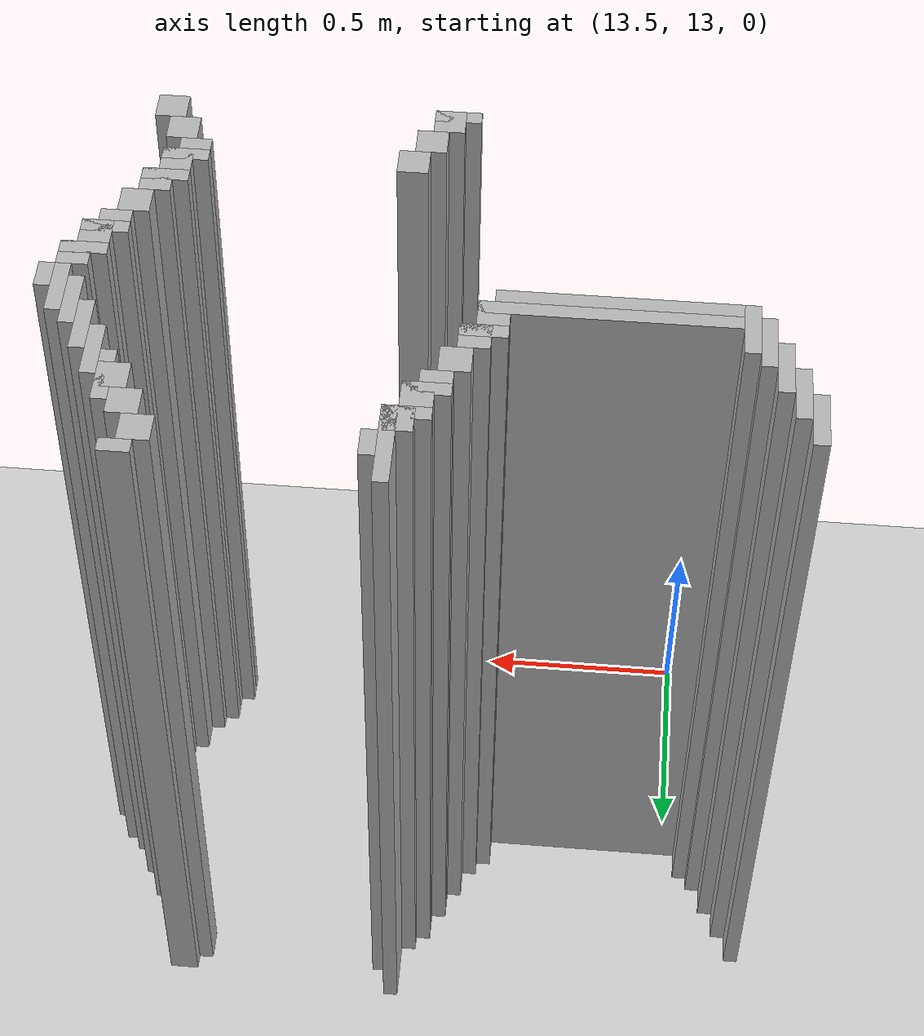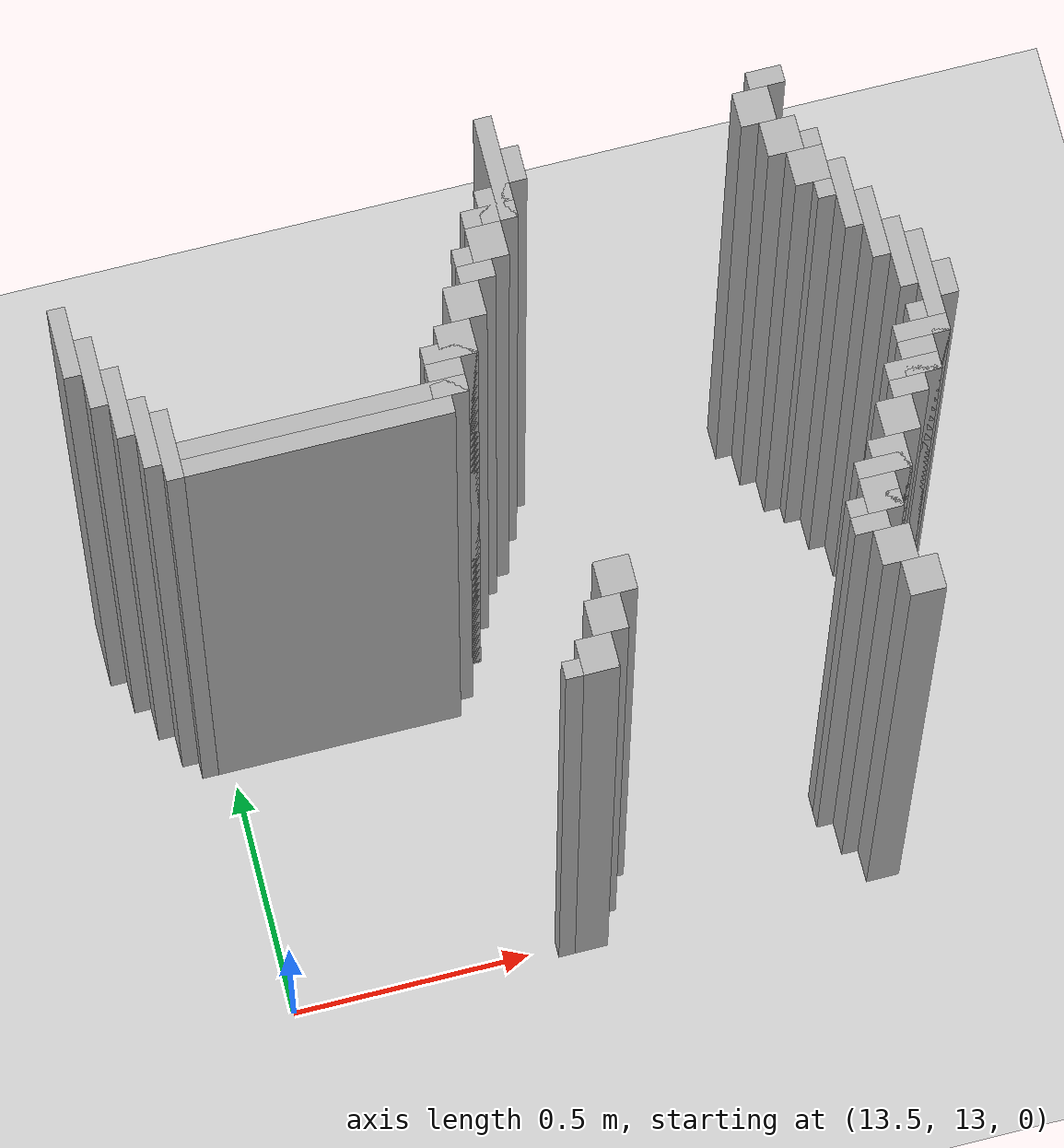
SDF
<sdf version="1.6">
 <world name="slam_world">
  <model name="ground_plane">
   <static>true</static>
   <link name="link">
    <collision name="collision">
     <geometry><plane><normal>0 0 1</normal><size>100 100</size></plane></geometry>
    </collision>
    <visual name="visual">
     <geometry><plane><normal>0 0 1</normal><size>100 100</size></plane></geometry>
     <material>
      <ambient>0.8 0.8 0.8 1</ambient>
      <diffuse>0.8 0.8 0.8 1</diffuse>
      <specular>0.8 0.8 0.8 1</specular>
     </material>
    </visual>
   </link>
  </model>
  <model name="wall_1115">
   <static>true</static>
   <pose>14.18213457076566 13.990719257540603 1.0 0 0 0</pose>
   <link name="link">
    <collision name="collision">
     <geometry><box><size>0.03480278422273782 0.2088167053364269 2.0</size></box></geometry>
    </collision>
    <visual name="visual">
     <geometry><box><size>0.03480278422273782 0.2088167053364269 2.0</size></box></geometry>
     <material><ambient>0.5 0.5 0.5 1</ambient><diffuse>0.7 0.7 0.7 1</diffuse></material>
    </visual>
   </link>
  </model>
  <model name="wall_1123">
   <static>true</static>
   <pose>14.721577726218097 14.042923433874709 1.0 0 0 0</pose>
   <link name="link">
    <collision name="collision">
     <geometry><box><size>0.06960556844547564 0.03480278422273782 2.0</size></box></geometry>
    </collision>
    <visual name="visual">
     <geometry><box><size>0.06960556844547564 0.03480278422273782 2.0</size></box></geometry>
     <material><ambient>0.5 0.5 0.5 1</ambient><diffuse>0.7 0.7 0.7 1</diffuse></material>
    </visual>
   </link>
  </model>
  <model name="wall_1136">
   <static>true</static>
   <pose>14.2169373549884 13.990719257540603 1.0 0 0 0</pose>
   <link name="link">
    <collision name="collision">
     <geometry><box><size>0.03480278422273782 0.06960556844547564 2.0</size></box></geometry>
    </collision>
    <visual name="visual">
     <geometry><box><size>0.03480278422273782 0.06960556844547564 2.0</size></box></geometry>
     <material><ambient>0.5 0.5 0.5 1</ambient><diffuse>0.7 0.7 0.7 1</diffuse></material>
    </visual>
   </link>
  </model>
  <model name="wall_1137">
   <static>true</static>
   <pose>14.68677494199536 13.990719257540603 1.0 0 0 0</pose>
   <link name="link">
    <collision name="collision">
     <geometry><box><size>0.06960556844547564 0.06960556844547564 2.0</size></box></geometry>
    </collision>
    <visual name="visual">
     <geometry><box><size>0.06960556844547564 0.06960556844547564 2.0</size></box></geometry>
     <material><ambient>0.5 0.5 0.5 1</ambient><diffuse>0.7 0.7 0.7 1</diffuse></material>
    </visual>
   </link>
  </model>
  <model name="wall_1153">
   <static>true</static>
   <pose>14.164733178654291 13.921113689095128 1.0 0 0 0</pose>
   <link name="link">
    <collision name="collision">
     <geometry><box><size>0.06960556844547564 0.06960556844547564 2.0</size></box></geometry>
    </collision>
    <visual name="visual">
     <geometry><box><size>0.06960556844547564 0.06960556844547564 2.0</size></box></geometry>
     <material><ambient>0.5 0.5 0.5 1</ambient><diffuse>0.7 0.7 0.7 1</diffuse></material>
    </visual>
   </link>
  </model>
  <model name="wall_1154">
   <static>true</static>
   <pose>14.721577726218097 13.921113689095128 1.0 0 0 0</pose>
   <link name="link">
    <collision name="collision">
     <geometry><box><size>0.06960556844547564 0.06960556844547564 2.0</size></box></geometry>
    </collision>
    <visual name="visual">
     <geometry><box><size>0.06960556844547564 0.06960556844547564 2.0</size></box></geometry>
     <material><ambient>0.5 0.5 0.5 1</ambient><diffuse>0.7 0.7 0.7 1</diffuse></material>
    </visual>
   </link>
  </model>
  <model name="wall_1169">
   <static>true</static>
   <pose>13.312064965197216 13.851508120649651 1.0 0 0 0</pose>
   <link name="link">
    <collision name="collision">
     <geometry><box><size>0.03480278422273782 0.13921113689095127 2.0</size></box></geometry>
    </collision>
    <visual name="visual">
     <geometry><box><size>0.03480278422273782 0.13921113689095127 2.0</size></box></geometry>
     <material><ambient>0.5 0.5 0.5 1</ambient><diffuse>0.7 0.7 0.7 1</diffuse></material>
    </visual>
   </link>
  </model>
  <model name="wall_1170">
   <static>true</static>
   <pose>14.147331786542923 13.903712296983759 1.0 0 0 0</pose>
   <link name="link">
    <collision name="collision">
     <geometry><box><size>0.10440835266821345 0.03480278422273782 2.0</size></box></geometry>
    </collision>
    <visual name="visual">
     <geometry><box><size>0.10440835266821345 0.03480278422273782 2.0</size></box></geometry>
     <material><ambient>0.5 0.5 0.5 1</ambient><diffuse>0.7 0.7 0.7 1</diffuse></material>
    </visual>
   </link>
  </model>
  <model name="wall_1171">
   <static>true</static>
   <pose>14.773781902552203 13.851508120649651 1.0 0 0 0</pose>
   <link name="link">
    <collision name="collision">
     <geometry><box><size>0.03480278422273782 0.13921113689095127 2.0</size></box></geometry>
    </collision>
    <visual name="visual">
     <geometry><box><size>0.03480278422273782 0.13921113689095127 2.0</size></box></geometry>
     <material><ambient>0.5 0.5 0.5 1</ambient><diffuse>0.7 0.7 0.7 1</diffuse></material>
    </visual>
   </link>
  </model>
  <model name="wall_1187">
   <static>true</static>
   <pose>14.129930394431554 13.851508120649651 1.0 0 0 0</pose>
   <link name="link">
    <collision name="collision">
     <geometry><box><size>0.06960556844547564 0.06960556844547564 2.0</size></box></geometry>
    </collision>
    <visual name="visual">
     <geometry><box><size>0.06960556844547564 0.06960556844547564 2.0</size></box></geometry>
     <material><ambient>0.5 0.5 0.5 1</ambient><diffuse>0.7 0.7 0.7 1</diffuse></material>
    </visual>
   </link>
  </model>
  <model name="wall_1188">
   <static>true</static>
   <pose>14.756380510440835 13.851508120649651 1.0 0 0 0</pose>
   <link name="link">
    <collision name="collision">
     <geometry><box><size>0.06960556844547564 0.06960556844547564 2.0</size></box></geometry>
    </collision>
    <visual name="visual">
     <geometry><box><size>0.06960556844547564 0.06960556844547564 2.0</size></box></geometry>
     <material><ambient>0.5 0.5 0.5 1</ambient><diffuse>0.7 0.7 0.7 1</diffuse></material>
    </visual>
   </link>
  </model>
  <model name="wall_1203">
   <static>true</static>
   <pose>13.346867749419953 13.781902552204176 1.0 0 0 0</pose>
   <link name="link">
    <collision name="collision">
     <geometry><box><size>0.03480278422273782 0.13921113689095127 2.0</size></box></geometry>
    </collision>
    <visual name="visual">
     <geometry><box><size>0.03480278422273782 0.13921113689095127 2.0</size></box></geometry>
     <material><ambient>0.5 0.5 0.5 1</ambient><diffuse>0.7 0.7 0.7 1</diffuse></material>
    </visual>
   </link>
  </model>
  <model name="wall_1204">
   <static>true</static>
   <pose>14.112529002320185 13.834106728538282 1.0 0 0 0</pose>
   <link name="link">
    <collision name="collision">
     <geometry><box><size>0.10440835266821345 0.03480278422273782 2.0</size></box></geometry>
    </collision>
    <visual name="visual">
     <geometry><box><size>0.10440835266821345 0.03480278422273782 2.0</size></box></geometry>
     <material><ambient>0.5 0.5 0.5 1</ambient><diffuse>0.7 0.7 0.7 1</diffuse></material>
    </visual>
   </link>
  </model>
  <model name="wall_1205">
   <static>true</static>
   <pose>14.80858468677494 13.781902552204176 1.0 0 0 0</pose>
   <link name="link">
    <collision name="collision">
     <geometry><box><size>0.03480278422273782 0.13921113689095127 2.0</size></box></geometry>
    </collision>
    <visual name="visual">
     <geometry><box><size>0.03480278422273782 0.13921113689095127 2.0</size></box></geometry>
     <material><ambient>0.5 0.5 0.5 1</ambient><diffuse>0.7 0.7 0.7 1</diffuse></material>
    </visual>
   </link>
  </model>
  <model name="wall_1211">
   <static>true</static>
   <pose>14.095127610208817 13.799303944315545 1.0 0 0 0</pose>
   <link name="link">
    <collision name="collision">
     <geometry><box><size>0.06960556844547564 0.03480278422273782 2.0</size></box></geometry>
    </collision>
    <visual name="visual">
     <geometry><box><size>0.06960556844547564 0.03480278422273782 2.0</size></box></geometry>
     <material><ambient>0.5 0.5 0.5 1</ambient><diffuse>0.7 0.7 0.7 1</diffuse></material>
    </visual>
   </link>
  </model>
  <model name="wall_1226">
   <static>true</static>
   <pose>13.38167053364269 13.7122969837587 1.0 0 0 0</pose>
   <link name="link">
    <collision name="collision">
     <geometry><box><size>0.03480278422273782 0.13921113689095127 2.0</size></box></geometry>
    </collision>
    <visual name="visual">
     <geometry><box><size>0.03480278422273782 0.13921113689095127 2.0</size></box></geometry>
     <material><ambient>0.5 0.5 0.5 1</ambient><diffuse>0.7 0.7 0.7 1</diffuse></material>
    </visual>
   </link>
  </model>
  <model name="wall_1227">
   <static>true</static>
   <pose>14.06032482598608 13.747099767981437 1.0 0 0 0</pose>
   <link name="link">
    <collision name="collision">
     <geometry><box><size>0.06960556844547564 0.06960556844547564 2.0</size></box></geometry>
    </collision>
    <visual name="visual">
     <geometry><box><size>0.06960556844547564 0.06960556844547564 2.0</size></box></geometry>
     <material><ambient>0.5 0.5 0.5 1</ambient><diffuse>0.7 0.7 0.7 1</diffuse></material>
    </visual>
   </link>
  </model>
  <model name="wall_1228">
   <static>true</static>
   <pose>14.84338747099768 13.7122969837587 1.0 0 0 0</pose>
   <link name="link">
    <collision name="collision">
     <geometry><box><size>0.03480278422273782 0.13921113689095127 2.0</size></box></geometry>
    </collision>
    <visual name="visual">
     <geometry><box><size>0.03480278422273782 0.13921113689095127 2.0</size></box></geometry>
     <material><ambient>0.5 0.5 0.5 1</ambient><diffuse>0.7 0.7 0.7 1</diffuse></material>
    </visual>
   </link>
  </model>
  <model name="wall_1243">
   <static>true</static>
   <pose>13.416473317865428 13.642691415313225 1.0 0 0 0</pose>
   <link name="link">
    <collision name="collision">
     <geometry><box><size>0.03480278422273782 0.13921113689095127 2.0</size></box></geometry>
    </collision>
    <visual name="visual">
     <geometry><box><size>0.03480278422273782 0.13921113689095127 2.0</size></box></geometry>
     <material><ambient>0.5 0.5 0.5 1</ambient><diffuse>0.7 0.7 0.7 1</diffuse></material>
    </visual>
   </link>
  </model>
  <model name="wall_1244">
   <static>true</static>
   <pose>14.02552204176334 13.677494199535962 1.0 0 0 0</pose>
   <link name="link">
    <collision name="collision">
     <geometry><box><size>0.06960556844547564 0.06960556844547564 2.0</size></box></geometry>
    </collision>
    <visual name="visual">
     <geometry><box><size>0.06960556844547564 0.06960556844547564 2.0</size></box></geometry>
     <material><ambient>0.5 0.5 0.5 1</ambient><diffuse>0.7 0.7 0.7 1</diffuse></material>
    </visual>
   </link>
  </model>
  <model name="wall_1245">
   <static>true</static>
   <pose>14.878190255220417 13.642691415313225 1.0 0 0 0</pose>
   <link name="link">
    <collision name="collision">
     <geometry><box><size>0.03480278422273782 0.13921113689095127 2.0</size></box></geometry>
    </collision>
    <visual name="visual">
     <geometry><box><size>0.03480278422273782 0.13921113689095127 2.0</size></box></geometry>
     <material><ambient>0.5 0.5 0.5 1</ambient><diffuse>0.7 0.7 0.7 1</diffuse></material>
    </visual>
   </link>
  </model>
  <model name="wall_1260">
   <static>true</static>
   <pose>13.451276102088167 13.607888631090487 1.0 0 0 0</pose>
   <link name="link">
    <collision name="collision">
     <geometry><box><size>0.03480278422273782 0.13921113689095127 2.0</size></box></geometry>
    </collision>
    <visual name="visual">
     <geometry><box><size>0.03480278422273782 0.13921113689095127 2.0</size></box></geometry>
     <material><ambient>0.5 0.5 0.5 1</ambient><diffuse>0.7 0.7 0.7 1</diffuse></material>
    </visual>
   </link>
  </model>
  <model name="wall_1261">
   <static>true</static>
   <pose>14.008120649651971 13.660092807424594 1.0 0 0 0</pose>
   <link name="link">
    <collision name="collision">
     <geometry><box><size>0.10440835266821345 0.03480278422273782 2.0</size></box></geometry>
    </collision>
    <visual name="visual">
     <geometry><box><size>0.10440835266821345 0.03480278422273782 2.0</size></box></geometry>
     <material><ambient>0.5 0.5 0.5 1</ambient><diffuse>0.7 0.7 0.7 1</diffuse></material>
    </visual>
   </link>
  </model>
  <model name="wall_1262">
   <static>true</static>
   <pose>14.912993039443155 13.573085846867748 1.0 0 0 0</pose>
   <link name="link">
    <collision name="collision">
     <geometry><box><size>0.03480278422273782 0.2088167053364269 2.0</size></box></geometry>
    </collision>
    <visual name="visual">
     <geometry><box><size>0.03480278422273782 0.2088167053364269 2.0</size></box></geometry>
     <material><ambient>0.5 0.5 0.5 1</ambient><diffuse>0.7 0.7 0.7 1</diffuse></material>
    </visual>
   </link>
  </model>
  <model name="wall_1268">
   <static>true</static>
   <pose>13.990719257540603 13.607888631090487 1.0 0 0 0</pose>
   <link name="link">
    <collision name="collision">
     <geometry><box><size>0.06960556844547564 0.06960556844547564 2.0</size></box></geometry>
    </collision>
    <visual name="visual">
     <geometry><box><size>0.06960556844547564 0.06960556844547564 2.0</size></box></geometry>
     <material><ambient>0.5 0.5 0.5 1</ambient><diffuse>0.7 0.7 0.7 1</diffuse></material>
    </visual>
   </link>
  </model>
  <model name="wall_1282">
   <static>true</static>
   <pose>13.747099767981437 13.590487238979117 1.0 0 0 0</pose>
   <link name="link">
    <collision name="collision">
     <geometry><box><size>0.5568445475638051 0.03480278422273782 2.0</size></box></geometry>
    </collision>
    <visual name="visual">
     <geometry><box><size>0.5568445475638051 0.03480278422273782 2.0</size></box></geometry>
     <material><ambient>0.5 0.5 0.5 1</ambient><diffuse>0.7 0.7 0.7 1</diffuse></material>
    </visual>
   </link>
  </model>
  <model name="wall_1283">
   <static>true</static>
   <pose>14.947795823665892 13.573085846867748 1.0 0 0 0</pose>
   <link name="link">
    <collision name="collision">
     <geometry><box><size>0.03480278422273782 0.06960556844547564 2.0</size></box></geometry>
    </collision>
    <visual name="visual">
     <geometry><box><size>0.03480278422273782 0.06960556844547564 2.0</size></box></geometry>
     <material><ambient>0.5 0.5 0.5 1</ambient><diffuse>0.7 0.7 0.7 1</diffuse></material>
    </visual>
   </link>
  </model>
  <model name="wall_1289">
   <static>true</static>
   <pose>13.729698375870068 13.55568445475638 1.0 0 0 0</pose>
   <link name="link">
    <collision name="collision">
     <geometry><box><size>0.5220417633410672 0.03480278422273782 2.0</size></box></geometry>
    </collision>
    <visual name="visual">
     <geometry><box><size>0.5220417633410672 0.03480278422273782 2.0</size></box></geometry>
     <material><ambient>0.5 0.5 0.5 1</ambient><diffuse>0.7 0.7 0.7 1</diffuse></material>
    </visual>
   </link>
  </model>
  <model name="wall_1303">
   <static>true</static>
   <pose>14.895591647331786 13.503480278422273 1.0 0 0 0</pose>
   <link name="link">
    <collision name="collision">
     <geometry><box><size>0.06960556844547564 0.06960556844547564 2.0</size></box></geometry>
    </collision>
    <visual name="visual">
     <geometry><box><size>0.06960556844547564 0.06960556844547564 2.0</size></box></geometry>
     <material><ambient>0.5 0.5 0.5 1</ambient><diffuse>0.7 0.7 0.7 1</diffuse></material>
    </visual>
   </link>
  </model>
  <model name="wall_1317">
   <static>true</static>
   <pose>14.878190255220417 13.486078886310905 1.0 0 0 0</pose>
   <link name="link">
    <collision name="collision">
     <geometry><box><size>0.10440835266821345 0.03480278422273782 2.0</size></box></geometry>
    </collision>
    <visual name="visual">
     <geometry><box><size>0.10440835266821345 0.03480278422273782 2.0</size></box></geometry>
     <material><ambient>0.5 0.5 0.5 1</ambient><diffuse>0.7 0.7 0.7 1</diffuse></material>
    </visual>
   </link>
  </model>
  <model name="wall_1331">
   <static>true</static>
   <pose>14.860788863109049 13.433874709976797 1.0 0 0 0</pose>
   <link name="link">
    <collision name="collision">
     <geometry><box><size>0.06960556844547564 0.06960556844547564 2.0</size></box></geometry>
    </collision>
    <visual name="visual">
     <geometry><box><size>0.06960556844547564 0.06960556844547564 2.0</size></box></geometry>
     <material><ambient>0.5 0.5 0.5 1</ambient><diffuse>0.7 0.7 0.7 1</diffuse></material>
    </visual>
   </link>
  </model>
  <model name="wall_1345">
   <static>true</static>
   <pose>14.84338747099768 13.416473317865428 1.0 0 0 0</pose>
   <link name="link">
    <collision name="collision">
     <geometry><box><size>0.10440835266821345 0.03480278422273782 2.0</size></box></geometry>
    </collision>
    <visual name="visual">
     <geometry><box><size>0.10440835266821345 0.03480278422273782 2.0</size></box></geometry>
     <material><ambient>0.5 0.5 0.5 1</ambient><diffuse>0.7 0.7 0.7 1</diffuse></material>
    </visual>
   </link>
  </model>
  <model name="wall_1352">
   <static>true</static>
   <pose>14.825986078886311 13.38167053364269 1.0 0 0 0</pose>
   <link name="link">
    <collision name="collision">
     <geometry><box><size>0.06960556844547564 0.03480278422273782 2.0</size></box></geometry>
    </collision>
    <visual name="visual">
     <geometry><box><size>0.06960556844547564 0.03480278422273782 2.0</size></box></geometry>
     <material><ambient>0.5 0.5 0.5 1</ambient><diffuse>0.7 0.7 0.7 1</diffuse></material>
    </visual>
   </link>
  </model>
  <model name="wall_1366">
   <static>true</static>
   <pose>14.791183294663572 13.329466357308585 1.0 0 0 0</pose>
   <link name="link">
    <collision name="collision">
     <geometry><box><size>0.06960556844547564 0.06960556844547564 2.0</size></box></geometry>
    </collision>
    <visual name="visual">
     <geometry><box><size>0.06960556844547564 0.06960556844547564 2.0</size></box></geometry>
     <material><ambient>0.5 0.5 0.5 1</ambient><diffuse>0.7 0.7 0.7 1</diffuse></material>
    </visual>
   </link>
  </model>
  <model name="wall_1380">
   <static>true</static>
   <pose>14.756380510440835 13.259860788863108 1.0 0 0 0</pose>
   <link name="link">
    <collision name="collision">
     <geometry><box><size>0.06960556844547564 0.06960556844547564 2.0</size></box></geometry>
    </collision>
    <visual name="visual">
     <geometry><box><size>0.06960556844547564 0.06960556844547564 2.0</size></box></geometry>
     <material><ambient>0.5 0.5 0.5 1</ambient><diffuse>0.7 0.7 0.7 1</diffuse></material>
    </visual>
   </link>
  </model>
  <model name="wall_1394">
   <static>true</static>
   <pose>14.738979118329466 13.24245939675174 1.0 0 0 0</pose>
   <link name="link">
    <collision name="collision">
     <geometry><box><size>0.10440835266821345 0.03480278422273782 2.0</size></box></geometry>
    </collision>
    <visual name="visual">
     <geometry><box><size>0.10440835266821345 0.03480278422273782 2.0</size></box></geometry>
     <material><ambient>0.5 0.5 0.5 1</ambient><diffuse>0.7 0.7 0.7 1</diffuse></material>
    </visual>
   </link>
  </model>
  <model name="wall_1401">
   <static>true</static>
   <pose>14.721577726218097 13.190255220417633 1.0 0 0 0</pose>
   <link name="link">
    <collision name="collision">
     <geometry><box><size>0.06960556844547564 0.06960556844547564 2.0</size></box></geometry>
    </collision>
    <visual name="visual">
     <geometry><box><size>0.06960556844547564 0.06960556844547564 2.0</size></box></geometry>
     <material><ambient>0.5 0.5 0.5 1</ambient><diffuse>0.7 0.7 0.7 1</diffuse></material>
    </visual>
   </link>
  </model>
  <model name="wall_1417">
   <static>true</static>
   <pose>14.199535962877029 13.155452436194896 1.0 0 0 0</pose>
   <link name="link">
    <collision name="collision">
     <geometry><box><size>0.06960556844547564 0.06960556844547564 2.0</size></box></geometry>
    </collision>
    <visual name="visual">
     <geometry><box><size>0.06960556844547564 0.06960556844547564 2.0</size></box></geometry>
     <material><ambient>0.5 0.5 0.5 1</ambient><diffuse>0.7 0.7 0.7 1</diffuse></material>
    </visual>
   </link>
  </model>
  <model name="wall_1418">
   <static>true</static>
   <pose>14.704176334106728 13.172853828306264 1.0 0 0 0</pose>
   <link name="link">
    <collision name="collision">
     <geometry><box><size>0.10440835266821345 0.03480278422273782 2.0</size></box></geometry>
    </collision>
    <visual name="visual">
     <geometry><box><size>0.10440835266821345 0.03480278422273782 2.0</size></box></geometry>
     <material><ambient>0.5 0.5 0.5 1</ambient><diffuse>0.7 0.7 0.7 1</diffuse></material>
    </visual>
   </link>
  </model>
  <model name="wall_1425">
   <static>true</static>
   <pose>14.68677494199536 13.138051044083527 1.0 0 0 0</pose>
   <link name="link">
    <collision name="collision">
     <geometry><box><size>0.06960556844547564 0.03480278422273782 2.0</size></box></geometry>
    </collision>
    <visual name="visual">
     <geometry><box><size>0.06960556844547564 0.03480278422273782 2.0</size></box></geometry>
     <material><ambient>0.5 0.5 0.5 1</ambient><diffuse>0.7 0.7 0.7 1</diffuse></material>
    </visual>
   </link>
  </model>
  <model name="wall_1440">
   <static>true</static>
   <pose>14.164733178654291 13.085846867749419 1.0 0 0 0</pose>
   <link name="link">
    <collision name="collision">
     <geometry><box><size>0.06960556844547564 0.06960556844547564 2.0</size></box></geometry>
    </collision>
    <visual name="visual">
     <geometry><box><size>0.06960556844547564 0.06960556844547564 2.0</size></box></geometry>
     <material><ambient>0.5 0.5 0.5 1</ambient><diffuse>0.7 0.7 0.7 1</diffuse></material>
    </visual>
   </link>
  </model>
  <model name="wall_1441">
   <static>true</static>
   <pose>14.721577726218097 13.085846867749419 1.0 0 0 0</pose>
   <link name="link">
    <collision name="collision">
     <geometry><box><size>0.06960556844547564 0.06960556844547564 2.0</size></box></geometry>
    </collision>
    <visual name="visual">
     <geometry><box><size>0.06960556844547564 0.06960556844547564 2.0</size></box></geometry>
     <material><ambient>0.5 0.5 0.5 1</ambient><diffuse>0.7 0.7 0.7 1</diffuse></material>
    </visual>
   </link>
  </model>
  <model name="wall_1462">
   <static>true</static>
   <pose>14.129930394431554 13.016241299303944 1.0 0 0 0</pose>
   <link name="link">
    <collision name="collision">
     <geometry><box><size>0.06960556844547564 0.06960556844547564 2.0</size></box></geometry>
    </collision>
    <visual name="visual">
     <geometry><box><size>0.06960556844547564 0.06960556844547564 2.0</size></box></geometry>
     <material><ambient>0.5 0.5 0.5 1</ambient><diffuse>0.7 0.7 0.7 1</diffuse></material>
    </visual>
   </link>
  </model>
  <model name="wall_1463">
   <static>true</static>
   <pose>14.756380510440835 13.016241299303944 1.0 0 0 0</pose>
   <link name="link">
    <collision name="collision">
     <geometry><box><size>0.06960556844547564 0.06960556844547564 2.0</size></box></geometry>
    </collision>
    <visual name="visual">
     <geometry><box><size>0.06960556844547564 0.06960556844547564 2.0</size></box></geometry>
     <material><ambient>0.5 0.5 0.5 1</ambient><diffuse>0.7 0.7 0.7 1</diffuse></material>
    </visual>
   </link>
  </model>
  <model name="wall_1478">
   <static>true</static>
   <pose>14.112529002320185 12.998839907192576 1.0 0 0 0</pose>
   <link name="link">
    <collision name="collision">
     <geometry><box><size>0.10440835266821345 0.03480278422273782 2.0</size></box></geometry>
    </collision>
    <visual name="visual">
     <geometry><box><size>0.10440835266821345 0.03480278422273782 2.0</size></box></geometry>
     <material><ambient>0.5 0.5 0.5 1</ambient><diffuse>0.7 0.7 0.7 1</diffuse></material>
    </visual>
   </link>
  </model>
 </world>
</sdf>
